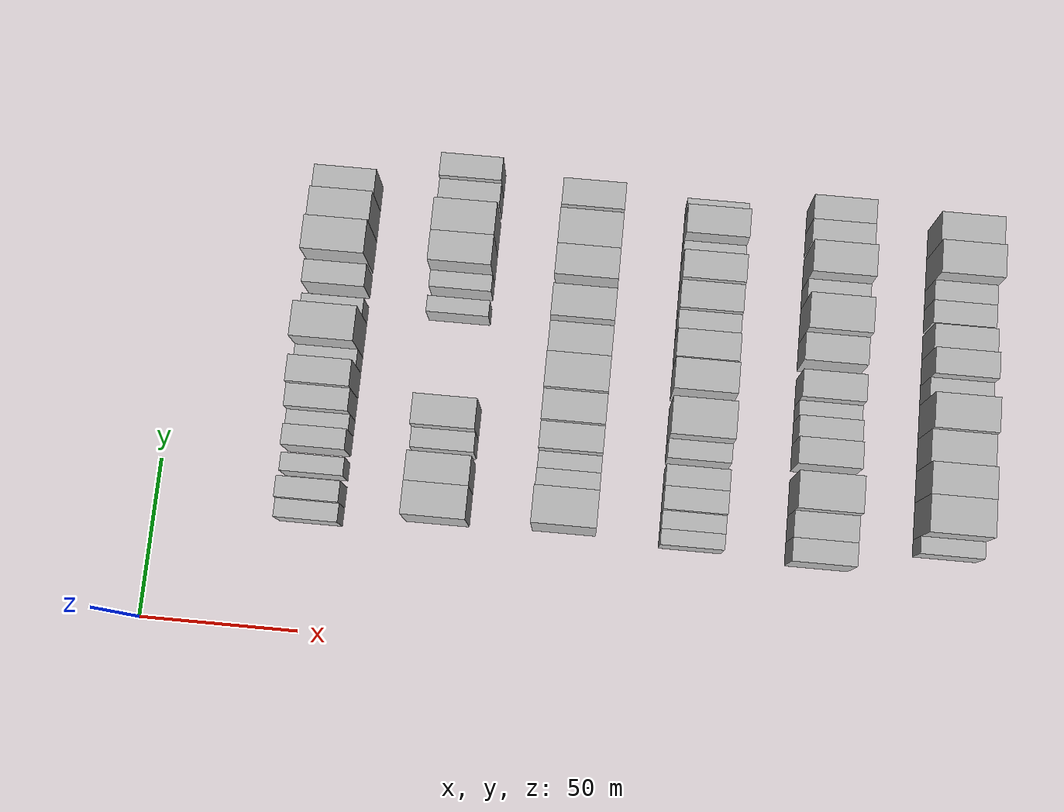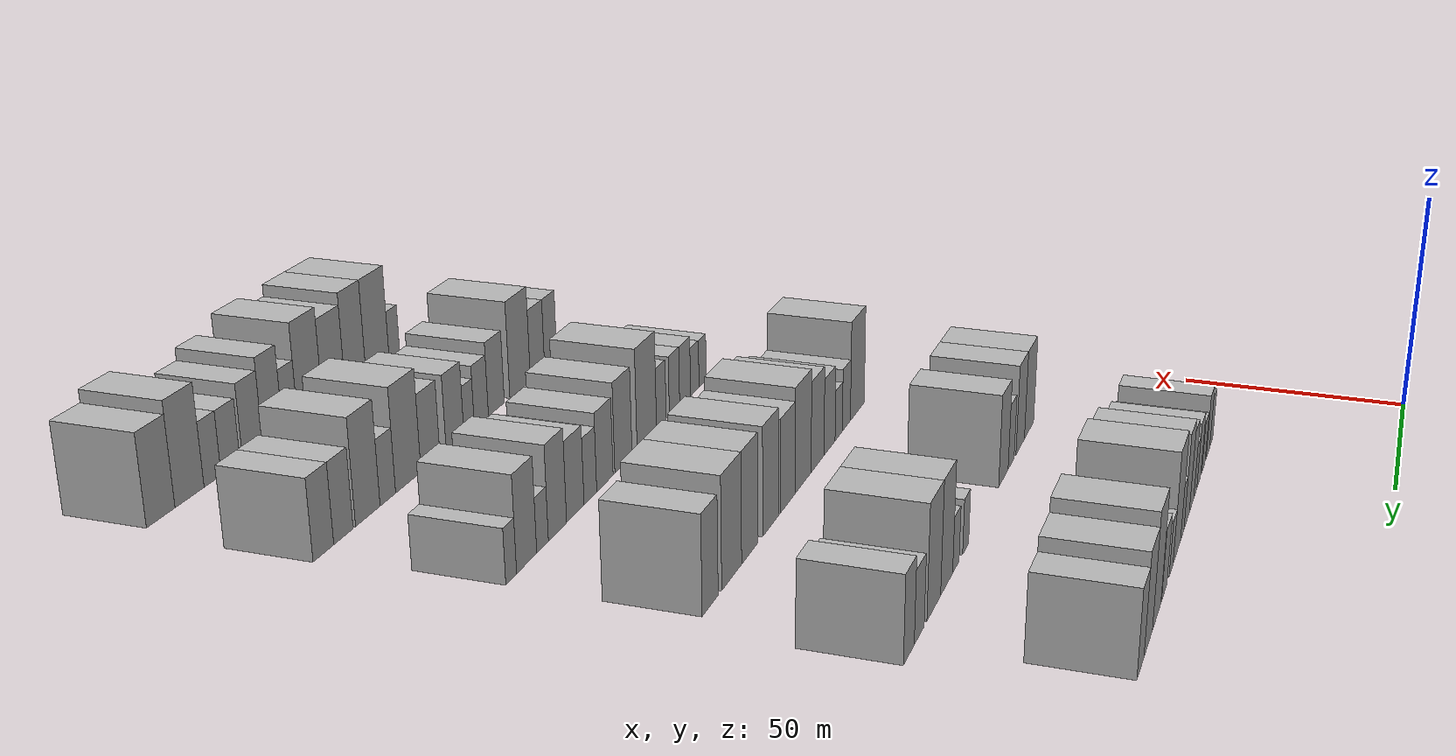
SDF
<sdf version="1.6">
 <world name="default">
  <model name="building_77">
   <static>1</static>
   <pose>50.0000 36.7248 0 0.000000 0.000000 0.000000</pose>
   <link name="link">
    <pose>0 0 6.00 0 0 0</pose>
    <collision name="collision"><geometry><box><size>20.0000 5.8759 12.0000</size></box></geometry></collision>
    <visual name="visual">
     <cast_shadows>0</cast_shadows>
     <geometry><box><size>20.0000 5.8759 12.0000</size></box></geometry>
     <material>
      <script>
       <uri>model://HANNAS_wall/materials/scripts</uri>
       <uri>model://HANNAS_wall/materials/textures</uri>
       <name>vrc/HANNAS_wall</name>
      </script>
     </material>
    </visual>
   </link>
  </model>
  <model name="building_78">
   <static>1</static>
   <pose>50.0000 42.9839 0 0.000000 0.000000 0.000000</pose>
   <link name="link">
    <pose>0 0 7.50 0 0 0</pose>
    <collision name="collision"><geometry><box><size>20.0000 6.6424 15.0000</size></box></geometry></collision>
    <visual name="visual">
     <cast_shadows>0</cast_shadows>
     <geometry><box><size>20.0000 6.6424 15.0000</size></box></geometry>
     <material>
      <script>
       <uri>model://HANNAS_wall/materials/scripts</uri>
       <uri>model://HANNAS_wall/materials/textures</uri>
       <name>vrc/HANNAS_wall</name>
      </script>
     </material>
    </visual>
   </link>
  </model>
  <model name="building_79">
   <static>1</static>
   <pose>50.0000 51.1880 0 0.000000 0.000000 0.000000</pose>
   <link name="link">
    <pose>0 0 6.00 0 0 0</pose>
    <collision name="collision"><geometry><box><size>20.0000 5.7658 12.0000</size></box></geometry></collision>
    <visual name="visual">
     <cast_shadows>0</cast_shadows>
     <geometry><box><size>20.0000 5.7658 12.0000</size></box></geometry>
     <material>
      <script>
       <uri>model://HANNAS_wall/materials/scripts</uri>
       <uri>model://HANNAS_wall/materials/textures</uri>
       <name>vrc/HANNAS_wall</name>
      </script>
     </material>
    </visual>
   </link>
  </model>
  <model name="building_80">
   <static>1</static>
   <pose>50.0000 59.3729 0 0.000000 0.000000 0.000000</pose>
   <link name="link">
    <pose>0 0 7.50 0 0 0</pose>
    <collision name="collision"><geometry><box><size>20.0000 6.6040 15.0000</size></box></geometry></collision>
    <visual name="visual">
     <cast_shadows>0</cast_shadows>
     <geometry><box><size>20.0000 6.6040 15.0000</size></box></geometry>
     <material>
      <script>
       <uri>model://HANNAS_wall/materials/scripts</uri>
       <uri>model://HANNAS_wall/materials/textures</uri>
       <name>vrc/HANNAS_wall</name>
      </script>
     </material>
    </visual>
   </link>
  </model>
  <model name="building_81">
   <static>1</static>
   <pose>50.0000 65.2330 0 0.000000 0.000000 0.000000</pose>
   <link name="link">
    <pose>0 0 6.00 0 0 0</pose>
    <collision name="collision"><geometry><box><size>20.0000 5.1162 12.0000</size></box></geometry></collision>
    <visual name="visual">
     <cast_shadows>0</cast_shadows>
     <geometry><box><size>20.0000 5.1162 12.0000</size></box></geometry>
     <material>
      <script>
       <uri>model://HANNAS_wall/materials/scripts</uri>
       <uri>model://HANNAS_wall/materials/textures</uri>
       <name>vrc/HANNAS_wall</name>
      </script>
     </material>
    </visual>
   </link>
  </model>
  <model name="building_82">
   <static>1</static>
   <pose>50.0000 71.4080 0 0.000000 0.000000 0.000000</pose>
   <link name="link">
    <pose>0 0 9.00 0 0 0</pose>
    <collision name="collision"><geometry><box><size>20.0000 7.2338 18.0000</size></box></geometry></collision>
    <visual name="visual">
     <cast_shadows>0</cast_shadows>
     <geometry><box><size>20.0000 7.2338 18.0000</size></box></geometry>
     <material>
      <script>
       <uri>model://HANNAS_wall/materials/scripts</uri>
       <uri>model://HANNAS_wall/materials/textures</uri>
       <name>vrc/HANNAS_wall</name>
      </script>
     </material>
    </visual>
   </link>
  </model>
  <model name="building_83">
   <static>1</static>
   <pose>50.0000 79.2357 0 0.000000 0.000000 0.000000</pose>
   <link name="link">
    <pose>0 0 10.50 0 0 0</pose>
    <collision name="collision"><geometry><box><size>20.0000 8.4216 21.0000</size></box></geometry></collision>
    <visual name="visual">
     <cast_shadows>0</cast_shadows>
     <geometry><box><size>20.0000 8.4216 21.0000</size></box></geometry>
     <material>
      <script>
       <uri>model://HANNAS_wall/materials/scripts</uri>
       <uri>model://HANNAS_wall/materials/textures</uri>
       <name>vrc/HANNAS_wall</name>
      </script>
     </material>
    </visual>
   </link>
  </model>
  <model name="building_84">
   <static>1</static>
   <pose>50.0000 86.0985 0 0.000000 0.000000 0.000000</pose>
   <link name="link">
    <pose>0 0 6.00 0 0 0</pose>
    <collision name="collision"><geometry><box><size>20.0000 5.3041 12.0000</size></box></geometry></collision>
    <visual name="visual">
     <cast_shadows>0</cast_shadows>
     <geometry><box><size>20.0000 5.3041 12.0000</size></box></geometry>
     <material>
      <script>
       <uri>model://HANNAS_wall/materials/scripts</uri>
       <uri>model://HANNAS_wall/materials/textures</uri>
       <name>vrc/HANNAS_wall</name>
      </script>
     </material>
    </visual>
   </link>
  </model>
  <model name="building_85">
   <static>1</static>
   <pose>50.0000 94.3335 0 0.000000 0.000000 0.000000</pose>
   <link name="link">
    <pose>0 0 12.00 0 0 0</pose>
    <collision name="collision"><geometry><box><size>20.0000 11.1659 24.0000</size></box></geometry></collision>
    <visual name="visual">
     <cast_shadows>0</cast_shadows>
     <geometry><box><size>20.0000 11.1659 24.0000</size></box></geometry>
     <material>
      <script>
       <uri>model://HANNAS_wall/materials/scripts</uri>
       <uri>model://HANNAS_wall/materials/textures</uri>
       <name>vrc/HANNAS_wall</name>
      </script>
     </material>
    </visual>
   </link>
  </model>
  <model name="building_86">
   <static>1</static>
   <pose>50.0000 102.6984 0 0.000000 0.000000 0.000000</pose>
   <link name="link">
    <pose>0 0 6.00 0 0 0</pose>
    <collision name="collision"><geometry><box><size>20.0000 5.5640 12.0000</size></box></geometry></collision>
    <visual name="visual">
     <cast_shadows>0</cast_shadows>
     <geometry><box><size>20.0000 5.5640 12.0000</size></box></geometry>
     <material>
      <script>
       <uri>model://HANNAS_wall/materials/scripts</uri>
       <uri>model://HANNAS_wall/materials/textures</uri>
       <name>vrc/HANNAS_wall</name>
      </script>
     </material>
    </visual>
   </link>
  </model>
  <model name="building_87">
   <static>1</static>
   <pose>50.0000 112.1887 0 0.000000 0.000000 0.000000</pose>
   <link name="link">
    <pose>0 0 7.50 0 0 0</pose>
    <collision name="collision"><geometry><box><size>20.0000 7.4165 15.0000</size></box></geometry></collision>
    <visual name="visual">
     <cast_shadows>0</cast_shadows>
     <geometry><box><size>20.0000 7.4165 15.0000</size></box></geometry>
     <material>
      <script>
       <uri>model://HANNAS_wall/materials/scripts</uri>
       <uri>model://HANNAS_wall/materials/textures</uri>
       <name>vrc/HANNAS_wall</name>
      </script>
     </material>
    </visual>
   </link>
  </model>
  <model name="building_88">
   <static>1</static>
   <pose>50.0000 122.3469 0 0.000000 0.000000 0.000000</pose>
   <link name="link">
    <pose>0 0 12.00 0 0 0</pose>
    <collision name="collision"><geometry><box><size>20.0000 10.8999 24.0000</size></box></geometry></collision>
    <visual name="visual">
     <cast_shadows>0</cast_shadows>
     <geometry><box><size>20.0000 10.8999 24.0000</size></box></geometry>
     <material>
      <script>
       <uri>model://HANNAS_wall/materials/scripts</uri>
       <uri>model://HANNAS_wall/materials/textures</uri>
       <name>vrc/HANNAS_wall</name>
      </script>
     </material>
    </visual>
   </link>
  </model>
  <model name="building_89">
   <static>1</static>
   <pose>50.0000 133.0041 0 0.000000 0.000000 0.000000</pose>
   <link name="link">
    <pose>0 0 10.50 0 0 0</pose>
    <collision name="collision"><geometry><box><size>20.0000 10.4147 21.0000</size></box></geometry></collision>
    <visual name="visual">
     <cast_shadows>0</cast_shadows>
     <geometry><box><size>20.0000 10.4147 21.0000</size></box></geometry>
     <material>
      <script>
       <uri>model://HANNAS_wall/materials/scripts</uri>
       <uri>model://HANNAS_wall/materials/textures</uri>
       <name>vrc/HANNAS_wall</name>
      </script>
     </material>
    </visual>
   </link>
  </model>
  <model name="building_90">
   <static>1</static>
   <pose>50.0000 142.3725 0 0.000000 0.000000 0.000000</pose>
   <link name="link">
    <pose>0 0 9.00 0 0 0</pose>
    <collision name="collision"><geometry><box><size>20.0000 8.3221 18.0000</size></box></geometry></collision>
    <visual name="visual">
     <cast_shadows>0</cast_shadows>
     <geometry><box><size>20.0000 8.3221 18.0000</size></box></geometry>
     <material>
      <script>
       <uri>model://HANNAS_wall/materials/scripts</uri>
       <uri>model://HANNAS_wall/materials/textures</uri>
       <name>vrc/HANNAS_wall</name>
      </script>
     </material>
    </visual>
   </link>
  </model>
  <model name="building_208">
   <static>1</static>
   <pose>90.0000 42.4214 0 0.000000 0.000000 0.000000</pose>
   <link name="link">
    <pose>0 0 10.50 0 0 0</pose>
    <collision name="collision"><geometry><box><size>20.0000 10.4000 21.0000</size></box></geometry></collision>
    <visual name="visual">
     <cast_shadows>0</cast_shadows>
     <geometry><box><size>20.0000 10.4000 21.0000</size></box></geometry>
     <material>
      <script>
       <uri>model://HANNAS_wall/materials/scripts</uri>
       <uri>model://HANNAS_wall/materials/textures</uri>
       <name>vrc/HANNAS_wall</name>
      </script>
     </material>
    </visual>
   </link>
  </model>
  <model name="building_209">
   <static>1</static>
   <pose>90.0000 52.2576 0 0.000000 0.000000 0.000000</pose>
   <link name="link">
    <pose>0 0 10.50 0 0 0</pose>
    <collision name="collision"><geometry><box><size>20.0000 9.2724 21.0000</size></box></geometry></collision>
    <visual name="visual">
     <cast_shadows>0</cast_shadows>
     <geometry><box><size>20.0000 9.2724 21.0000</size></box></geometry>
     <material>
      <script>
       <uri>model://HANNAS_wall/materials/scripts</uri>
       <uri>model://HANNAS_wall/materials/textures</uri>
       <name>vrc/HANNAS_wall</name>
      </script>
     </material>
    </visual>
   </link>
  </model>
  <model name="building_210">
   <static>1</static>
   <pose>90.0000 62.0426 0 0.000000 0.000000 0.000000</pose>
   <link name="link">
    <pose>0 0 7.50 0 0 0</pose>
    <collision name="collision"><geometry><box><size>20.0000 6.2976 15.0000</size></box></geometry></collision>
    <visual name="visual">
     <cast_shadows>0</cast_shadows>
     <geometry><box><size>20.0000 6.2976 15.0000</size></box></geometry>
     <material>
      <script>
       <uri>model://HANNAS_wall/materials/scripts</uri>
       <uri>model://HANNAS_wall/materials/textures</uri>
       <name>vrc/HANNAS_wall</name>
      </script>
     </material>
    </visual>
   </link>
  </model>
  <model name="building_211">
   <static>1</static>
   <pose>90.0000 70.0160 0 0.000000 0.000000 0.000000</pose>
   <link name="link">
    <pose>0 0 10.50 0 0 0</pose>
    <collision name="collision"><geometry><box><size>20.0000 9.6491 21.0000</size></box></geometry></collision>
    <visual name="visual">
     <cast_shadows>0</cast_shadows>
     <geometry><box><size>20.0000 9.6491 21.0000</size></box></geometry>
     <material>
      <script>
       <uri>model://HANNAS_wall/materials/scripts</uri>
       <uri>model://HANNAS_wall/materials/textures</uri>
       <name>vrc/HANNAS_wall</name>
      </script>
     </material>
    </visual>
   </link>
  </model>
  <model name="building_212">
   <static>1</static>
   <pose>90.0000 105.7080 0 0.000000 0.000000 0.000000</pose>
   <link name="link">
    <pose>0 0 6.00 0 0 0</pose>
    <collision name="collision"><geometry><box><size>20.0000 5.2450 12.0000</size></box></geometry></collision>
    <visual name="visual">
     <cast_shadows>0</cast_shadows>
     <geometry><box><size>20.0000 5.2450 12.0000</size></box></geometry>
     <material>
      <script>
       <uri>model://HANNAS_wall/materials/scripts</uri>
       <uri>model://HANNAS_wall/materials/textures</uri>
       <name>vrc/HANNAS_wall</name>
      </script>
     </material>
    </visual>
   </link>
  </model>
  <model name="building_213">
   <static>1</static>
   <pose>90.0000 114.0397 0 0.000000 0.000000 0.000000</pose>
   <link name="link">
    <pose>0 0 6.00 0 0 0</pose>
    <collision name="collision"><geometry><box><size>20.0000 5.4184 12.0000</size></box></geometry></collision>
    <visual name="visual">
     <cast_shadows>0</cast_shadows>
     <geometry><box><size>20.0000 5.4184 12.0000</size></box></geometry>
     <material>
      <script>
       <uri>model://HANNAS_wall/materials/scripts</uri>
       <uri>model://HANNAS_wall/materials/textures</uri>
       <name>vrc/HANNAS_wall</name>
      </script>
     </material>
    </visual>
   </link>
  </model>
  <model name="building_214">
   <static>1</static>
   <pose>90.0000 121.6353 0 0.000000 0.000000 0.000000</pose>
   <link name="link">
    <pose>0 0 12.00 0 0 0</pose>
    <collision name="collision"><geometry><box><size>20.0000 9.7728 24.0000</size></box></geometry></collision>
    <visual name="visual">
     <cast_shadows>0</cast_shadows>
     <geometry><box><size>20.0000 9.7728 24.0000</size></box></geometry>
     <material>
      <script>
       <uri>model://HANNAS_wall/materials/scripts</uri>
       <uri>model://HANNAS_wall/materials/textures</uri>
       <name>vrc/HANNAS_wall</name>
      </script>
     </material>
    </visual>
   </link>
  </model>
  <model name="building_215">
   <static>1</static>
   <pose>90.0000 131.8488 0 0.000000 0.000000 0.000000</pose>
   <link name="link">
    <pose>0 0 12.00 0 0 0</pose>
    <collision name="collision"><geometry><box><size>20.0000 10.6542 24.0000</size></box></geometry></collision>
    <visual name="visual">
     <cast_shadows>0</cast_shadows>
     <geometry><box><size>20.0000 10.6542 24.0000</size></box></geometry>
     <material>
      <script>
       <uri>model://HANNAS_wall/materials/scripts</uri>
       <uri>model://HANNAS_wall/materials/textures</uri>
       <name>vrc/HANNAS_wall</name>
      </script>
     </material>
    </visual>
   </link>
  </model>
  <model name="building_216">
   <static>1</static>
   <pose>90.0000 142.8266 0 0.000000 0.000000 0.000000</pose>
   <link name="link">
    <pose>0 0 7.50 0 0 0</pose>
    <collision name="collision"><geometry><box><size>20.0000 7.3014 15.0000</size></box></geometry></collision>
    <visual name="visual">
     <cast_shadows>0</cast_shadows>
     <geometry><box><size>20.0000 7.3014 15.0000</size></box></geometry>
     <material>
      <script>
       <uri>model://HANNAS_wall/materials/scripts</uri>
       <uri>model://HANNAS_wall/materials/textures</uri>
       <name>vrc/HANNAS_wall</name>
      </script>
     </material>
    </visual>
   </link>
  </model>
  <model name="building_217">
   <static>1</static>
   <pose>90.0000 150.3114 0 0.000000 0.000000 0.000000</pose>
   <link name="link">
    <pose>0 0 9.00 0 0 0</pose>
    <collision name="collision"><geometry><box><size>20.0000 7.6682 18.0000</size></box></geometry></collision>
    <visual name="visual">
     <cast_shadows>0</cast_shadows>
     <geometry><box><size>20.0000 7.6682 18.0000</size></box></geometry>
     <material>
      <script>
       <uri>model://HANNAS_wall/materials/scripts</uri>
       <uri>model://HANNAS_wall/materials/textures</uri>
       <name>vrc/HANNAS_wall</name>
      </script>
     </material>
    </visual>
   </link>
  </model>
  <model name="building_334">
   <static>1</static>
   <pose>130.0000 43.7214 0 0.000000 0.000000 0.000000</pose>
   <link name="link">
    <pose>0 0 12.00 0 0 0</pose>
    <collision name="collision"><geometry><box><size>20.0000 11.5984 24.0000</size></box></geometry></collision>
    <visual name="visual">
     <cast_shadows>0</cast_shadows>
     <geometry><box><size>20.0000 11.5984 24.0000</size></box></geometry>
     <material>
      <script>
       <uri>model://HANNAS_wall/materials/scripts</uri>
       <uri>model://HANNAS_wall/materials/textures</uri>
       <name>vrc/HANNAS_wall</name>
      </script>
     </material>
    </visual>
   </link>
  </model>
  <model name="building_335">
   <static>1</static>
   <pose>130.0000 52.7872 0 0.000000 0.000000 0.000000</pose>
   <link name="link">
    <pose>0 0 7.50 0 0 0</pose>
    <collision name="collision"><geometry><box><size>20.0000 6.5332 15.0000</size></box></geometry></collision>
    <visual name="visual">
     <cast_shadows>0</cast_shadows>
     <geometry><box><size>20.0000 6.5332 15.0000</size></box></geometry>
     <material>
      <script>
       <uri>model://HANNAS_wall/materials/scripts</uri>
       <uri>model://HANNAS_wall/materials/textures</uri>
       <name>vrc/HANNAS_wall</name>
      </script>
     </material>
    </visual>
   </link>
  </model>
  <model name="building_336">
   <static>1</static>
   <pose>130.0000 58.9454 0 0.000000 0.000000 0.000000</pose>
   <link name="link">
    <pose>0 0 6.00 0 0 0</pose>
    <collision name="collision"><geometry><box><size>20.0000 5.7833 12.0000</size></box></geometry></collision>
    <visual name="visual">
     <cast_shadows>0</cast_shadows>
     <geometry><box><size>20.0000 5.7833 12.0000</size></box></geometry>
     <material>
      <script>
       <uri>model://HANNAS_wall/materials/scripts</uri>
       <uri>model://HANNAS_wall/materials/textures</uri>
       <name>vrc/HANNAS_wall</name>
      </script>
     </material>
    </visual>
   </link>
  </model>
  <model name="building_337">
   <static>1</static>
   <pose>130.0000 66.0952 0 0.000000 0.000000 0.000000</pose>
   <link name="link">
    <pose>0 0 9.00 0 0 0</pose>
    <collision name="collision"><geometry><box><size>20.0000 8.5162 18.0000</size></box></geometry></collision>
    <visual name="visual">
     <cast_shadows>0</cast_shadows>
     <geometry><box><size>20.0000 8.5162 18.0000</size></box></geometry>
     <material>
      <script>
       <uri>model://HANNAS_wall/materials/scripts</uri>
       <uri>model://HANNAS_wall/materials/textures</uri>
       <name>vrc/HANNAS_wall</name>
      </script>
     </material>
    </visual>
   </link>
  </model>
  <model name="building_338">
   <static>1</static>
   <pose>130.0000 75.1581 0 0.000000 0.000000 0.000000</pose>
   <link name="link">
    <pose>0 0 10.50 0 0 0</pose>
    <collision name="collision"><geometry><box><size>20.0000 9.6096 21.0000</size></box></geometry></collision>
    <visual name="visual">
     <cast_shadows>0</cast_shadows>
     <geometry><box><size>20.0000 9.6096 21.0000</size></box></geometry>
     <material>
      <script>
       <uri>model://HANNAS_wall/materials/scripts</uri>
       <uri>model://HANNAS_wall/materials/textures</uri>
       <name>vrc/HANNAS_wall</name>
      </script>
     </material>
    </visual>
   </link>
  </model>
  <model name="building_339">
   <static>1</static>
   <pose>130.0000 85.6019 0 0.000000 0.000000 0.000000</pose>
   <link name="link">
    <pose>0 0 12.00 0 0 0</pose>
    <collision name="collision"><geometry><box><size>20.0000 11.2780 24.0000</size></box></geometry></collision>
    <visual name="visual">
     <cast_shadows>0</cast_shadows>
     <geometry><box><size>20.0000 11.2780 24.0000</size></box></geometry>
     <material>
      <script>
       <uri>model://HANNAS_wall/materials/scripts</uri>
       <uri>model://HANNAS_wall/materials/textures</uri>
       <name>vrc/HANNAS_wall</name>
      </script>
     </material>
    </visual>
   </link>
  </model>
  <model name="building_340">
   <static>1</static>
   <pose>130.0000 96.4014 0 0.000000 0.000000 0.000000</pose>
   <link name="link">
    <pose>0 0 10.50 0 0 0</pose>
    <collision name="collision"><geometry><box><size>20.0000 10.3210 21.0000</size></box></geometry></collision>
    <visual name="visual">
     <cast_shadows>0</cast_shadows>
     <geometry><box><size>20.0000 10.3210 21.0000</size></box></geometry>
     <material>
      <script>
       <uri>model://HANNAS_wall/materials/scripts</uri>
       <uri>model://HANNAS_wall/materials/textures</uri>
       <name>vrc/HANNAS_wall</name>
      </script>
     </material>
    </visual>
   </link>
  </model>
  <model name="building_341">
   <static>1</static>
   <pose>130.0000 107.7015 0 0.000000 0.000000 0.000000</pose>
   <link name="link">
    <pose>0 0 12.00 0 0 0</pose>
    <collision name="collision"><geometry><box><size>20.0000 10.2792 24.0000</size></box></geometry></collision>
    <visual name="visual">
     <cast_shadows>0</cast_shadows>
     <geometry><box><size>20.0000 10.2792 24.0000</size></box></geometry>
     <material>
      <script>
       <uri>model://HANNAS_wall/materials/scripts</uri>
       <uri>model://HANNAS_wall/materials/textures</uri>
       <name>vrc/HANNAS_wall</name>
      </script>
     </material>
    </visual>
   </link>
  </model>
  <model name="building_342">
   <static>1</static>
   <pose>130.0000 120.8466 0 0.000000 0.000000 0.000000</pose>
   <link name="link">
    <pose>0 0 12.00 0 0 0</pose>
    <collision name="collision"><geometry><box><size>20.0000 10.0109 24.0000</size></box></geometry></collision>
    <visual name="visual">
     <cast_shadows>0</cast_shadows>
     <geometry><box><size>20.0000 10.0109 24.0000</size></box></geometry>
     <material>
      <script>
       <uri>model://HANNAS_wall/materials/scripts</uri>
       <uri>model://HANNAS_wall/materials/textures</uri>
       <name>vrc/HANNAS_wall</name>
      </script>
     </material>
    </visual>
   </link>
  </model>
  <model name="building_343">
   <static>1</static>
   <pose>130.0000 131.6492 0 0.000000 0.000000 0.000000</pose>
   <link name="link">
    <pose>0 0 12.00 0 0 0</pose>
    <collision name="collision"><geometry><box><size>20.0000 11.5943 24.0000</size></box></geometry></collision>
    <visual name="visual">
     <cast_shadows>0</cast_shadows>
     <geometry><box><size>20.0000 11.5943 24.0000</size></box></geometry>
     <material>
      <script>
       <uri>model://HANNAS_wall/materials/scripts</uri>
       <uri>model://HANNAS_wall/materials/textures</uri>
       <name>vrc/HANNAS_wall</name>
      </script>
     </material>
    </visual>
   </link>
  </model>
  <model name="building_344">
   <static>1</static>
   <pose>130.0000 143.8523 0 0.000000 0.000000 0.000000</pose>
   <link name="link">
    <pose>0 0 10.50 0 0 0</pose>
    <collision name="collision"><geometry><box><size>20.0000 8.8119 21.0000</size></box></geometry></collision>
    <visual name="visual">
     <cast_shadows>0</cast_shadows>
     <geometry><box><size>20.0000 8.8119 21.0000</size></box></geometry>
     <material>
      <script>
       <uri>model://HANNAS_wall/materials/scripts</uri>
       <uri>model://HANNAS_wall/materials/textures</uri>
       <name>vrc/HANNAS_wall</name>
      </script>
     </material>
    </visual>
   </link>
  </model>
  <model name="building_479">
   <static>1</static>
   <pose>170.0000 38.5151 0 0.000000 0.000000 0.000000</pose>
   <link name="link">
    <pose>0 0 6.00 0 0 0</pose>
    <collision name="collision"><geometry><box><size>20.0000 5.0163 12.0000</size></box></geometry></collision>
    <visual name="visual">
     <cast_shadows>0</cast_shadows>
     <geometry><box><size>20.0000 5.0163 12.0000</size></box></geometry>
     <material>
      <script>
       <uri>model://HANNAS_wall/materials/scripts</uri>
       <uri>model://HANNAS_wall/materials/textures</uri>
       <name>vrc/HANNAS_wall</name>
      </script>
     </material>
    </visual>
   </link>
  </model>
  <model name="building_480">
   <static>1</static>
   <pose>170.0000 43.8987 0 0.000000 0.000000 0.000000</pose>
   <link name="link">
    <pose>0 0 6.00 0 0 0</pose>
    <collision name="collision"><geometry><box><size>20.0000 5.7510 12.0000</size></box></geometry></collision>
    <visual name="visual">
     <cast_shadows>0</cast_shadows>
     <geometry><box><size>20.0000 5.7510 12.0000</size></box></geometry>
     <material>
      <script>
       <uri>model://HANNAS_wall/materials/scripts</uri>
       <uri>model://HANNAS_wall/materials/textures</uri>
       <name>vrc/HANNAS_wall</name>
      </script>
     </material>
    </visual>
   </link>
  </model>
  <model name="building_481">
   <static>1</static>
   <pose>170.0000 50.4154 0 0.000000 0.000000 0.000000</pose>
   <link name="link">
    <pose>0 0 7.50 0 0 0</pose>
    <collision name="collision"><geometry><box><size>20.0000 7.2824 15.0000</size></box></geometry></collision>
    <visual name="visual">
     <cast_shadows>0</cast_shadows>
     <geometry><box><size>20.0000 7.2824 15.0000</size></box></geometry>
     <material>
      <script>
       <uri>model://HANNAS_wall/materials/scripts</uri>
       <uri>model://HANNAS_wall/materials/textures</uri>
       <name>vrc/HANNAS_wall</name>
      </script>
     </material>
    </visual>
   </link>
  </model>
  <model name="building_482">
   <static>1</static>
   <pose>170.0000 57.4066 0 0.000000 0.000000 0.000000</pose>
   <link name="link">
    <pose>0 0 7.50 0 0 0</pose>
    <collision name="collision"><geometry><box><size>20.0000 6.7001 15.0000</size></box></geometry></collision>
    <visual name="visual">
     <cast_shadows>0</cast_shadows>
     <geometry><box><size>20.0000 6.7001 15.0000</size></box></geometry>
     <material>
      <script>
       <uri>model://HANNAS_wall/materials/scripts</uri>
       <uri>model://HANNAS_wall/materials/textures</uri>
       <name>vrc/HANNAS_wall</name>
      </script>
     </material>
    </visual>
   </link>
  </model>
  <model name="building_483">
   <static>1</static>
   <pose>170.0000 65.7919 0 0.000000 0.000000 0.000000</pose>
   <link name="link">
    <pose>0 0 7.50 0 0 0</pose>
    <collision name="collision"><geometry><box><size>20.0000 6.0705 15.0000</size></box></geometry></collision>
    <visual name="visual">
     <cast_shadows>0</cast_shadows>
     <geometry><box><size>20.0000 6.0705 15.0000</size></box></geometry>
     <material>
      <script>
       <uri>model://HANNAS_wall/materials/scripts</uri>
       <uri>model://HANNAS_wall/materials/textures</uri>
       <name>vrc/HANNAS_wall</name>
      </script>
     </material>
    </visual>
   </link>
  </model>
  <model name="building_484">
   <static>1</static>
   <pose>170.0000 74.7415 0 0.000000 0.000000 0.000000</pose>
   <link name="link">
    <pose>0 0 12.00 0 0 0</pose>
    <collision name="collision"><geometry><box><size>20.0000 11.8287 24.0000</size></box></geometry></collision>
    <visual name="visual">
     <cast_shadows>0</cast_shadows>
     <geometry><box><size>20.0000 11.8287 24.0000</size></box></geometry>
     <material>
      <script>
       <uri>model://HANNAS_wall/materials/scripts</uri>
       <uri>model://HANNAS_wall/materials/textures</uri>
       <name>vrc/HANNAS_wall</name>
      </script>
     </material>
    </visual>
   </link>
  </model>
  <model name="building_485">
   <static>1</static>
   <pose>170.0000 88.5896 0 0.000000 0.000000 0.000000</pose>
   <link name="link">
    <pose>0 0 10.50 0 0 0</pose>
    <collision name="collision"><geometry><box><size>20.0000 9.8675 21.0000</size></box></geometry></collision>
    <visual name="visual">
     <cast_shadows>0</cast_shadows>
     <geometry><box><size>20.0000 9.8675 21.0000</size></box></geometry>
     <material>
      <script>
       <uri>model://HANNAS_wall/materials/scripts</uri>
       <uri>model://HANNAS_wall/materials/textures</uri>
       <name>vrc/HANNAS_wall</name>
      </script>
     </material>
    </visual>
   </link>
  </model>
  <model name="building_486">
   <static>1</static>
   <pose>170.0000 99.0149 0 0.000000 0.000000 0.000000</pose>
   <link name="link">
    <pose>0 0 9.00 0 0 0</pose>
    <collision name="collision"><geometry><box><size>20.0000 8.9831 18.0000</size></box></geometry></collision>
    <visual name="visual">
     <cast_shadows>0</cast_shadows>
     <geometry><box><size>20.0000 8.9831 18.0000</size></box></geometry>
     <material>
      <script>
       <uri>model://HANNAS_wall/materials/scripts</uri>
       <uri>model://HANNAS_wall/materials/textures</uri>
       <name>vrc/HANNAS_wall</name>
      </script>
     </material>
    </visual>
   </link>
  </model>
  <model name="building_487">
   <static>1</static>
   <pose>170.0000 106.8874 0 0.000000 0.000000 0.000000</pose>
   <link name="link">
    <pose>0 0 7.50 0 0 0</pose>
    <collision name="collision"><geometry><box><size>20.0000 6.7619 15.0000</size></box></geometry></collision>
    <visual name="visual">
     <cast_shadows>0</cast_shadows>
     <geometry><box><size>20.0000 6.7619 15.0000</size></box></geometry>
     <material>
      <script>
       <uri>model://HANNAS_wall/materials/scripts</uri>
       <uri>model://HANNAS_wall/materials/textures</uri>
       <name>vrc/HANNAS_wall</name>
      </script>
     </material>
    </visual>
   </link>
  </model>
  <model name="building_488">
   <static>1</static>
   <pose>170.0000 114.7614 0 0.000000 0.000000 0.000000</pose>
   <link name="link">
    <pose>0 0 9.00 0 0 0</pose>
    <collision name="collision"><geometry><box><size>20.0000 8.9861 18.0000</size></box></geometry></collision>
    <visual name="visual">
     <cast_shadows>0</cast_shadows>
     <geometry><box><size>20.0000 8.9861 18.0000</size></box></geometry>
     <material>
      <script>
       <uri>model://HANNAS_wall/materials/scripts</uri>
       <uri>model://HANNAS_wall/materials/textures</uri>
       <name>vrc/HANNAS_wall</name>
      </script>
     </material>
    </visual>
   </link>
  </model>
  <model name="building_489">
   <static>1</static>
   <pose>170.0000 123.7586 0 0.000000 0.000000 0.000000</pose>
   <link name="link">
    <pose>0 0 10.50 0 0 0</pose>
    <collision name="collision"><geometry><box><size>20.0000 9.0084 21.0000</size></box></geometry></collision>
    <visual name="visual">
     <cast_shadows>0</cast_shadows>
     <geometry><box><size>20.0000 9.0084 21.0000</size></box></geometry>
     <material>
      <script>
       <uri>model://HANNAS_wall/materials/scripts</uri>
       <uri>model://HANNAS_wall/materials/textures</uri>
       <name>vrc/HANNAS_wall</name>
      </script>
     </material>
    </visual>
   </link>
  </model>
  <model name="building_490">
   <static>1</static>
   <pose>170.0000 131.0609 0 0.000000 0.000000 0.000000</pose>
   <link name="link">
    <pose>0 0 6.00 0 0 0</pose>
    <collision name="collision"><geometry><box><size>20.0000 5.5961 12.0000</size></box></geometry></collision>
    <visual name="visual">
     <cast_shadows>0</cast_shadows>
     <geometry><box><size>20.0000 5.5961 12.0000</size></box></geometry>
     <material>
      <script>
       <uri>model://HANNAS_wall/materials/scripts</uri>
       <uri>model://HANNAS_wall/materials/textures</uri>
       <name>vrc/HANNAS_wall</name>
      </script>
     </material>
    </visual>
   </link>
  </model>
  <model name="building_491">
   <static>1</static>
   <pose>170.0000 138.5177 0 0.000000 0.000000 0.000000</pose>
   <link name="link">
    <pose>0 0 10.50 0 0 0</pose>
    <collision name="collision"><geometry><box><size>20.0000 9.3176 21.0000</size></box></geometry></collision>
    <visual name="visual">
     <cast_shadows>0</cast_shadows>
     <geometry><box><size>20.0000 9.3176 21.0000</size></box></geometry>
     <material>
      <script>
       <uri>model://HANNAS_wall/materials/scripts</uri>
       <uri>model://HANNAS_wall/materials/textures</uri>
       <name>vrc/HANNAS_wall</name>
      </script>
     </material>
    </visual>
   </link>
  </model>
  <model name="building_492">
   <static>1</static>
   <pose>170.0000 145.6083 0 0.000000 0.000000 0.000000</pose>
   <link name="link">
    <pose>0 0 6.00 0 0 0</pose>
    <collision name="collision"><geometry><box><size>20.0000 4.8636 12.0000</size></box></geometry></collision>
    <visual name="visual">
     <cast_shadows>0</cast_shadows>
     <geometry><box><size>20.0000 4.8636 12.0000</size></box></geometry>
     <material>
      <script>
       <uri>model://HANNAS_wall/materials/scripts</uri>
       <uri>model://HANNAS_wall/materials/textures</uri>
       <name>vrc/HANNAS_wall</name>
      </script>
     </material>
    </visual>
   </link>
  </model>
  <model name="building_621">
   <static>1</static>
   <pose>210.0000 37.6984 0 0.000000 0.000000 0.000000</pose>
   <link name="link">
    <pose>0 0 9.00 0 0 0</pose>
    <collision name="collision"><geometry><box><size>20.0000 7.3061 18.0000</size></box></geometry></collision>
    <visual name="visual">
     <cast_shadows>0</cast_shadows>
     <geometry><box><size>20.0000 7.3061 18.0000</size></box></geometry>
     <material>
      <script>
       <uri>model://HANNAS_wall/materials/scripts</uri>
       <uri>model://HANNAS_wall/materials/textures</uri>
       <name>vrc/HANNAS_wall</name>
      </script>
     </material>
    </visual>
   </link>
  </model>
  <model name="building_622">
   <static>1</static>
   <pose>210.0000 45.4911 0 0.000000 0.000000 0.000000</pose>
   <link name="link">
    <pose>0 0 9.00 0 0 0</pose>
    <collision name="collision"><geometry><box><size>20.0000 8.2793 18.0000</size></box></geometry></collision>
    <visual name="visual">
     <cast_shadows>0</cast_shadows>
     <geometry><box><size>20.0000 8.2793 18.0000</size></box></geometry>
     <material>
      <script>
       <uri>model://HANNAS_wall/materials/scripts</uri>
       <uri>model://HANNAS_wall/materials/textures</uri>
       <name>vrc/HANNAS_wall</name>
      </script>
     </material>
    </visual>
   </link>
  </model>
  <model name="building_623">
   <static>1</static>
   <pose>210.0000 55.3977 0 0.000000 0.000000 0.000000</pose>
   <link name="link">
    <pose>0 0 12.00 0 0 0</pose>
    <collision name="collision"><geometry><box><size>20.0000 11.5339 24.0000</size></box></geometry></collision>
    <visual name="visual">
     <cast_shadows>0</cast_shadows>
     <geometry><box><size>20.0000 11.5339 24.0000</size></box></geometry>
     <material>
      <script>
       <uri>model://HANNAS_wall/materials/scripts</uri>
       <uri>model://HANNAS_wall/materials/textures</uri>
       <name>vrc/HANNAS_wall</name>
      </script>
     </material>
    </visual>
   </link>
  </model>
  <model name="building_624">
   <static>1</static>
   <pose>210.0000 68.4162 0 0.000000 0.000000 0.000000</pose>
   <link name="link">
    <pose>0 0 9.00 0 0 0</pose>
    <collision name="collision"><geometry><box><size>20.0000 8.5031 18.0000</size></box></geometry></collision>
    <visual name="visual">
     <cast_shadows>0</cast_shadows>
     <geometry><box><size>20.0000 8.5031 18.0000</size></box></geometry>
     <material>
      <script>
       <uri>model://HANNAS_wall/materials/scripts</uri>
       <uri>model://HANNAS_wall/materials/textures</uri>
       <name>vrc/HANNAS_wall</name>
      </script>
     </material>
    </visual>
   </link>
  </model>
  <model name="building_625">
   <static>1</static>
   <pose>210.0000 76.2998 0 0.000000 0.000000 0.000000</pose>
   <link name="link">
    <pose>0 0 7.50 0 0 0</pose>
    <collision name="collision"><geometry><box><size>20.0000 7.2642 15.0000</size></box></geometry></collision>
    <visual name="visual">
     <cast_shadows>0</cast_shadows>
     <geometry><box><size>20.0000 7.2642 15.0000</size></box></geometry>
     <material>
      <script>
       <uri>model://HANNAS_wall/materials/scripts</uri>
       <uri>model://HANNAS_wall/materials/textures</uri>
       <name>vrc/HANNAS_wall</name>
      </script>
     </material>
    </visual>
   </link>
  </model>
  <model name="building_626">
   <static>1</static>
   <pose>210.0000 82.5546 0 0.000000 0.000000 0.000000</pose>
   <link name="link">
    <pose>0 0 6.00 0 0 0</pose>
    <collision name="collision"><geometry><box><size>20.0000 5.2455 12.0000</size></box></geometry></collision>
    <visual name="visual">
     <cast_shadows>0</cast_shadows>
     <geometry><box><size>20.0000 5.2455 12.0000</size></box></geometry>
     <material>
      <script>
       <uri>model://HANNAS_wall/materials/scripts</uri>
       <uri>model://HANNAS_wall/materials/textures</uri>
       <name>vrc/HANNAS_wall</name>
      </script>
     </material>
    </visual>
   </link>
  </model>
  <model name="building_627">
   <static>1</static>
   <pose>210.0000 89.5579 0 0.000000 0.000000 0.000000</pose>
   <link name="link">
    <pose>0 0 9.00 0 0 0</pose>
    <collision name="collision"><geometry><box><size>20.0000 8.7610 18.0000</size></box></geometry></collision>
    <visual name="visual">
     <cast_shadows>0</cast_shadows>
     <geometry><box><size>20.0000 8.7610 18.0000</size></box></geometry>
     <material>
      <script>
       <uri>model://HANNAS_wall/materials/scripts</uri>
       <uri>model://HANNAS_wall/materials/textures</uri>
       <name>vrc/HANNAS_wall</name>
      </script>
     </material>
    </visual>
   </link>
  </model>
  <model name="building_628">
   <static>1</static>
   <pose>210.0000 101.3856 0 0.000000 0.000000 0.000000</pose>
   <link name="link">
    <pose>0 0 9.00 0 0 0</pose>
    <collision name="collision"><geometry><box><size>20.0000 8.8946 18.0000</size></box></geometry></collision>
    <visual name="visual">
     <cast_shadows>0</cast_shadows>
     <geometry><box><size>20.0000 8.8946 18.0000</size></box></geometry>
     <material>
      <script>
       <uri>model://HANNAS_wall/materials/scripts</uri>
       <uri>model://HANNAS_wall/materials/textures</uri>
       <name>vrc/HANNAS_wall</name>
      </script>
     </material>
    </visual>
   </link>
  </model>
  <model name="building_629">
   <static>1</static>
   <pose>210.0000 111.5283 0 0.000000 0.000000 0.000000</pose>
   <link name="link">
    <pose>0 0 12.00 0 0 0</pose>
    <collision name="collision"><geometry><box><size>20.0000 11.3909 24.0000</size></box></geometry></collision>
    <visual name="visual">
     <cast_shadows>0</cast_shadows>
     <geometry><box><size>20.0000 11.3909 24.0000</size></box></geometry>
     <material>
      <script>
       <uri>model://HANNAS_wall/materials/scripts</uri>
       <uri>model://HANNAS_wall/materials/textures</uri>
       <name>vrc/HANNAS_wall</name>
      </script>
     </material>
    </visual>
   </link>
  </model>
  <model name="building_630">
   <static>1</static>
   <pose>210.0000 120.5874 0 0.000000 0.000000 0.000000</pose>
   <link name="link">
    <pose>0 0 7.50 0 0 0</pose>
    <collision name="collision"><geometry><box><size>20.0000 6.7272 15.0000</size></box></geometry></collision>
    <visual name="visual">
     <cast_shadows>0</cast_shadows>
     <geometry><box><size>20.0000 6.7272 15.0000</size></box></geometry>
     <material>
      <script>
       <uri>model://HANNAS_wall/materials/scripts</uri>
       <uri>model://HANNAS_wall/materials/textures</uri>
       <name>vrc/HANNAS_wall</name>
      </script>
     </material>
    </visual>
   </link>
  </model>
  <model name="building_631">
   <static>1</static>
   <pose>210.0000 129.0759 0 0.000000 0.000000 0.000000</pose>
   <link name="link">
    <pose>0 0 12.00 0 0 0</pose>
    <collision name="collision"><geometry><box><size>20.0000 10.2498 24.0000</size></box></geometry></collision>
    <visual name="visual">
     <cast_shadows>0</cast_shadows>
     <geometry><box><size>20.0000 10.2498 24.0000</size></box></geometry>
     <material>
      <script>
       <uri>model://HANNAS_wall/materials/scripts</uri>
       <uri>model://HANNAS_wall/materials/textures</uri>
       <name>vrc/HANNAS_wall</name>
      </script>
     </material>
    </visual>
   </link>
  </model>
  <model name="building_632">
   <static>1</static>
   <pose>210.0000 139.0622 0 0.000000 0.000000 0.000000</pose>
   <link name="link">
    <pose>0 0 9.00 0 0 0</pose>
    <collision name="collision"><geometry><box><size>20.0000 7.7226 18.0000</size></box></geometry></collision>
    <visual name="visual">
     <cast_shadows>0</cast_shadows>
     <geometry><box><size>20.0000 7.7226 18.0000</size></box></geometry>
     <material>
      <script>
       <uri>model://HANNAS_wall/materials/scripts</uri>
       <uri>model://HANNAS_wall/materials/textures</uri>
       <name>vrc/HANNAS_wall</name>
      </script>
     </material>
    </visual>
   </link>
  </model>
  <model name="building_633">
   <static>1</static>
   <pose>210.0000 146.9281 0 0.000000 0.000000 0.000000</pose>
   <link name="link">
    <pose>0 0 9.00 0 0 0</pose>
    <collision name="collision"><geometry><box><size>20.0000 8.0092 18.0000</size></box></geometry></collision>
    <visual name="visual">
     <cast_shadows>0</cast_shadows>
     <geometry><box><size>20.0000 8.0092 18.0000</size></box></geometry>
     <material>
      <script>
       <uri>model://HANNAS_wall/materials/scripts</uri>
       <uri>model://HANNAS_wall/materials/textures</uri>
       <name>vrc/HANNAS_wall</name>
      </script>
     </material>
    </visual>
   </link>
  </model>
  <model name="building_751">
   <static>1</static>
   <pose>250.0000 43.2111 0 0.000000 0.000000 0.000000</pose>
   <link name="link">
    <pose>0 0 6.00 0 0 0</pose>
    <collision name="collision"><geometry><box><size>20.0000 5.4162 12.0000</size></box></geometry></collision>
    <visual name="visual">
     <cast_shadows>0</cast_shadows>
     <geometry><box><size>20.0000 5.4162 12.0000</size></box></geometry>
     <material>
      <script>
       <uri>model://HANNAS_wall/materials/scripts</uri>
       <uri>model://HANNAS_wall/materials/textures</uri>
       <name>vrc/HANNAS_wall</name>
      </script>
     </material>
    </visual>
   </link>
  </model>
  <model name="building_752">
   <static>1</static>
   <pose>250.0000 51.7525 0 0.000000 0.000000 0.000000</pose>
   <link name="link">
    <pose>0 0 12.00 0 0 0</pose>
    <collision name="collision"><geometry><box><size>20.0000 11.6667 24.0000</size></box></geometry></collision>
    <visual name="visual">
     <cast_shadows>0</cast_shadows>
     <geometry><box><size>20.0000 11.6667 24.0000</size></box></geometry>
     <material>
      <script>
       <uri>model://HANNAS_wall/materials/scripts</uri>
       <uri>model://HANNAS_wall/materials/textures</uri>
       <name>vrc/HANNAS_wall</name>
      </script>
     </material>
    </visual>
   </link>
  </model>
  <model name="building_753">
   <static>1</static>
   <pose>250.0000 62.5937 0 0.000000 0.000000 0.000000</pose>
   <link name="link">
    <pose>0 0 12.00 0 0 0</pose>
    <collision name="collision"><geometry><box><size>20.0000 10.0155 24.0000</size></box></geometry></collision>
    <visual name="visual">
     <cast_shadows>0</cast_shadows>
     <geometry><box><size>20.0000 10.0155 24.0000</size></box></geometry>
     <material>
      <script>
       <uri>model://HANNAS_wall/materials/scripts</uri>
       <uri>model://HANNAS_wall/materials/textures</uri>
       <name>vrc/HANNAS_wall</name>
      </script>
     </material>
    </visual>
   </link>
  </model>
  <model name="building_754">
   <static>1</static>
   <pose>250.0000 72.8466 0 0.000000 0.000000 0.000000</pose>
   <link name="link">
    <pose>0 0 10.50 0 0 0</pose>
    <collision name="collision"><geometry><box><size>20.0000 10.4903 21.0000</size></box></geometry></collision>
    <visual name="visual">
     <cast_shadows>0</cast_shadows>
     <geometry><box><size>20.0000 10.4903 21.0000</size></box></geometry>
     <material>
      <script>
       <uri>model://HANNAS_wall/materials/scripts</uri>
       <uri>model://HANNAS_wall/materials/textures</uri>
       <name>vrc/HANNAS_wall</name>
      </script>
     </material>
    </visual>
   </link>
  </model>
  <model name="building_755">
   <static>1</static>
   <pose>250.0000 83.6267 0 0.000000 0.000000 0.000000</pose>
   <link name="link">
    <pose>0 0 12.00 0 0 0</pose>
    <collision name="collision"><geometry><box><size>20.0000 11.0699 24.0000</size></box></geometry></collision>
    <visual name="visual">
     <cast_shadows>0</cast_shadows>
     <geometry><box><size>20.0000 11.0699 24.0000</size></box></geometry>
     <material>
      <script>
       <uri>model://HANNAS_wall/materials/scripts</uri>
       <uri>model://HANNAS_wall/materials/textures</uri>
       <name>vrc/HANNAS_wall</name>
      </script>
     </material>
    </visual>
   </link>
  </model>
  <model name="building_756">
   <static>1</static>
   <pose>250.0000 92.3704 0 0.000000 0.000000 0.000000</pose>
   <link name="link">
    <pose>0 0 7.50 0 0 0</pose>
    <collision name="collision"><geometry><box><size>20.0000 6.4175 15.0000</size></box></geometry></collision>
    <visual name="visual">
     <cast_shadows>0</cast_shadows>
     <geometry><box><size>20.0000 6.4175 15.0000</size></box></geometry>
     <material>
      <script>
       <uri>model://HANNAS_wall/materials/scripts</uri>
       <uri>model://HANNAS_wall/materials/textures</uri>
       <name>vrc/HANNAS_wall</name>
      </script>
     </material>
    </visual>
   </link>
  </model>
  <model name="building_757">
   <static>1</static>
   <pose>250.0000 99.7860 0 0.000000 0.000000 0.000000</pose>
   <link name="link">
    <pose>0 0 10.50 0 0 0</pose>
    <collision name="collision"><geometry><box><size>20.0000 8.4137 21.0000</size></box></geometry></collision>
    <visual name="visual">
     <cast_shadows>0</cast_shadows>
     <geometry><box><size>20.0000 8.4137 21.0000</size></box></geometry>
     <material>
      <script>
       <uri>model://HANNAS_wall/materials/scripts</uri>
       <uri>model://HANNAS_wall/materials/textures</uri>
       <name>vrc/HANNAS_wall</name>
      </script>
     </material>
    </visual>
   </link>
  </model>
  <model name="building_758">
   <static>1</static>
   <pose>250.0000 108.1145 0 0.000000 0.000000 0.000000</pose>
   <link name="link">
    <pose>0 0 9.00 0 0 0</pose>
    <collision name="collision"><geometry><box><size>20.0000 8.2435 18.0000</size></box></geometry></collision>
    <visual name="visual">
     <cast_shadows>0</cast_shadows>
     <geometry><box><size>20.0000 8.2435 18.0000</size></box></geometry>
     <material>
      <script>
       <uri>model://HANNAS_wall/materials/scripts</uri>
       <uri>model://HANNAS_wall/materials/textures</uri>
       <name>vrc/HANNAS_wall</name>
      </script>
     </material>
    </visual>
   </link>
  </model>
  <model name="building_759">
   <static>1</static>
   <pose>250.0000 116.9565 0 0.000000 0.000000 0.000000</pose>
   <link name="link">
    <pose>0 0 7.50 0 0 0</pose>
    <collision name="collision"><geometry><box><size>20.0000 7.4405 15.0000</size></box></geometry></collision>
    <visual name="visual">
     <cast_shadows>0</cast_shadows>
     <geometry><box><size>20.0000 7.4405 15.0000</size></box></geometry>
     <material>
      <script>
       <uri>model://HANNAS_wall/materials/scripts</uri>
       <uri>model://HANNAS_wall/materials/textures</uri>
       <name>vrc/HANNAS_wall</name>
      </script>
     </material>
    </visual>
   </link>
  </model>
  <model name="building_760">
   <static>1</static>
   <pose>250.0000 123.9284 0 0.000000 0.000000 0.000000</pose>
   <link name="link">
    <pose>0 0 7.50 0 0 0</pose>
    <collision name="collision"><geometry><box><size>20.0000 6.5031 15.0000</size></box></geometry></collision>
    <visual name="visual">
     <cast_shadows>0</cast_shadows>
     <geometry><box><size>20.0000 6.5031 15.0000</size></box></geometry>
     <material>
      <script>
       <uri>model://HANNAS_wall/materials/scripts</uri>
       <uri>model://HANNAS_wall/materials/textures</uri>
       <name>vrc/HANNAS_wall</name>
      </script>
     </material>
    </visual>
   </link>
  </model>
  <model name="building_761">
   <static>1</static>
   <pose>250.0000 132.5230 0 0.000000 0.000000 0.000000</pose>
   <link name="link">
    <pose>0 0 12.00 0 0 0</pose>
    <collision name="collision"><geometry><box><size>20.0000 10.6862 24.0000</size></box></geometry></collision>
    <visual name="visual">
     <cast_shadows>0</cast_shadows>
     <geometry><box><size>20.0000 10.6862 24.0000</size></box></geometry>
     <material>
      <script>
       <uri>model://HANNAS_wall/materials/scripts</uri>
       <uri>model://HANNAS_wall/materials/textures</uri>
       <name>vrc/HANNAS_wall</name>
      </script>
     </material>
    </visual>
   </link>
  </model>
  <model name="building_762">
   <static>1</static>
   <pose>250.0000 142.8956 0 0.000000 0.000000 0.000000</pose>
   <link name="link">
    <pose>0 0 10.50 0 0 0</pose>
    <collision name="collision"><geometry><box><size>20.0000 10.0590 21.0000</size></box></geometry></collision>
    <visual name="visual">
     <cast_shadows>0</cast_shadows>
     <geometry><box><size>20.0000 10.0590 21.0000</size></box></geometry>
     <material>
      <script>
       <uri>model://HANNAS_wall/materials/scripts</uri>
       <uri>model://HANNAS_wall/materials/textures</uri>
       <name>vrc/HANNAS_wall</name>
      </script>
     </material>
    </visual>
   </link>
  </model>
 </world>
</sdf>
